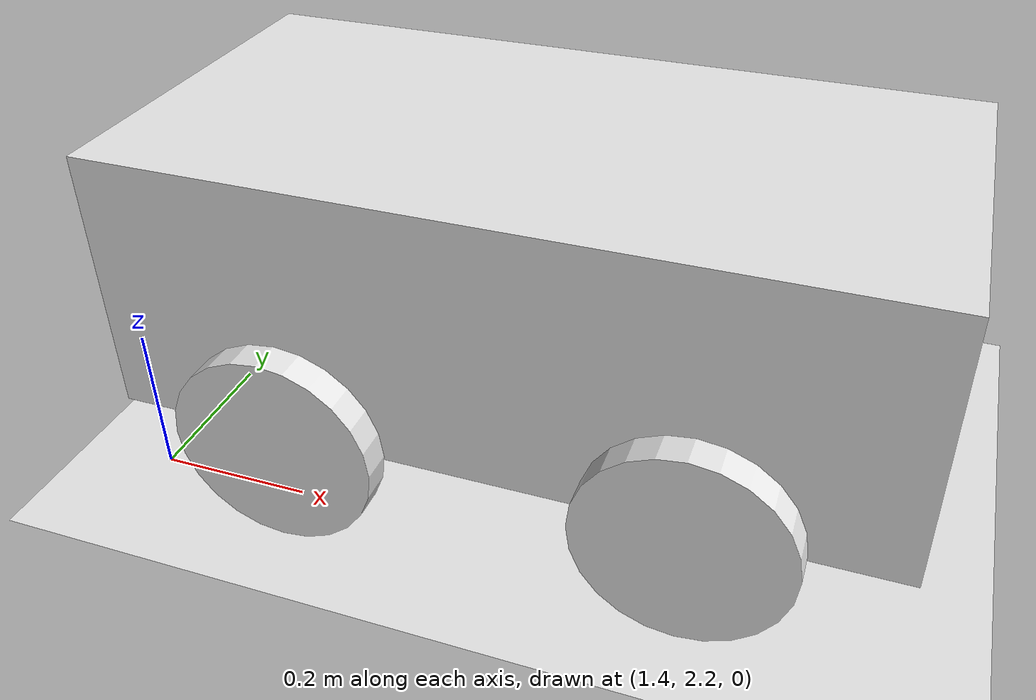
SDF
<sdf version="1.7">
 <world name="default">
  <model name="ground_plane">
   <static>1</static>
   <link name="link">
    <collision name="collision">
     <geometry><plane><normal>0 0 1</normal><size>100 100</size></plane></geometry>
     <surface><friction><ode><mu>100</mu><mu2>50</mu2></ode></friction></surface>
    </collision>
    <visual name="visual">
     <cast_shadows>0</cast_shadows>
     <geometry><plane><normal>0 0 1</normal><size>100 100</size></plane></geometry>
     <material>
      <script><uri>file://media/materials/scripts/gazebo.material</uri><name>Gazebo/White</name></script>
     </material>
    </visual>
   </link>
  </model>
  <model name="robot_0">
   <link name="link_0">
    <pose>0.144522 0.224076 0 0 -0 0</pose>
    <inertial>
     <mass>5</mass>
     <inertia>
      <ixx>0.166667</ixx>
      <ixy>0</ixy>
      <ixz>0</ixz>
      <iyy>0.166667</iyy>
      <iyz>0</iyz>
      <izz>0.166667</izz>
     </inertia>
    </inertial>
    <visual name="visual">
     <pose>0 0 0.15 0 -0 0</pose>
     <geometry><box><size>1 0.5 0.35</size></box></geometry>
     <material>
      <lighting>1</lighting>
      <script><uri>file://media/materials/scripts/gazebo.material</uri><name>Gazebo/White</name></script>
      <shader type="pixel"><normal_map>__default__</normal_map></shader>
      <ambient>0.3 0.3 0.3 1</ambient>
      <diffuse>0.7 0.7 0.7 1</diffuse>
      <specular>0.01 0.01 0.01 1</specular>
      <emissive>0 0 0 1</emissive>
     </material>
    </visual>
    <collision name="collision">
     <pose>0 0 0.15 0 -0 0</pose>
     <geometry><box><size>1 0.5 0.35</size></box></geometry>
     <surface>
      <friction>
       <ode><mu>1</mu><mu2>1</mu2><fdir1>0 0 0</fdir1><slip1>0</slip1><slip2>0</slip2></ode>
       <torsional>
        <coefficient>1</coefficient>
        <patch_radius>0</patch_radius>
        <surface_radius>0</surface_radius>
        <use_patch_radius>1</use_patch_radius>
        <ode><slip>0</slip></ode>
       </torsional>
      </friction>
      <bounce><restitution_coefficient>0</restitution_coefficient><threshold>1e+06</threshold></bounce>
      <contact>
       <collide_without_contact>0</collide_without_contact>
       <collide_without_contact_bitmask>1</collide_without_contact_bitmask>
       <collide_bitmask>1</collide_bitmask>
       <ode>
        <soft_cfm>0</soft_cfm>
        <soft_erp>0.2</soft_erp>
        <kp>1e+13</kp>
        <kd>1</kd>
        <max_vel>0.01</max_vel>
        <min_depth>0</min_depth>
       </ode>
       <bullet>
        <split_impulse>1</split_impulse>
        <split_impulse_penetration_threshold>-0.01</split_impulse_penetration_threshold>
        <soft_cfm>0</soft_cfm>
        <soft_erp>0.2</soft_erp>
        <kp>1e+13</kp>
        <kd>1</kd>
       </bullet>
      </contact>
     </surface>
    </collision>
   </link>
   <link name="link_1">
    <pose>-0.105478 -0.065924 0 1.5707 -0 0</pose>
    <inertial>
     <mass>1</mass>
     <inertia><ixx>0.145833</ixx><ixy>0</ixy><ixz>0</ixz><iyy>0.145833</iyy><iyz>0</iyz><izz>0.125</izz></inertia>
    </inertial>
    <visual name="visual">
     <geometry><cylinder><radius>0.13</radius><length>0.04</length></cylinder></geometry>
     <material>
      <lighting>1</lighting>
      <script><uri>file://media/materials/scripts/gazebo.material</uri><name>Gazebo/White</name></script>
      <shader type="pixel"><normal_map>__default__</normal_map></shader>
      <ambient>0.3 0.3 0.3 1</ambient>
      <diffuse>0.7 0.7 0.7 1</diffuse>
      <specular>0.01 0.01 0.01 1</specular>
      <emissive>0 0 0 1</emissive>
     </material>
    </visual>
    <collision name="collision">
     <geometry><cylinder><radius>0.13</radius><length>0.04</length></cylinder></geometry>
     <surface>
      <friction>
       <ode><mu>1</mu><mu2>1</mu2><fdir1>0 0 0</fdir1><slip1>0</slip1><slip2>0</slip2></ode>
       <torsional>
        <coefficient>1</coefficient>
        <patch_radius>0</patch_radius>
        <surface_radius>0</surface_radius>
        <use_patch_radius>1</use_patch_radius>
        <ode><slip>0</slip></ode>
       </torsional>
      </friction>
      <bounce><restitution_coefficient>0</restitution_coefficient><threshold>1e+06</threshold></bounce>
      <contact>
       <collide_without_contact>0</collide_without_contact>
       <collide_without_contact_bitmask>1</collide_without_contact_bitmask>
       <collide_bitmask>1</collide_bitmask>
       <ode>
        <soft_cfm>0</soft_cfm>
        <soft_erp>0.2</soft_erp>
        <kp>1e+13</kp>
        <kd>1</kd>
        <max_vel>0.01</max_vel>
        <min_depth>0</min_depth>
       </ode>
       <bullet>
        <split_impulse>1</split_impulse>
        <split_impulse_penetration_threshold>-0.01</split_impulse_penetration_threshold>
        <soft_cfm>0</soft_cfm>
        <soft_erp>0.2</soft_erp>
        <kp>1e+13</kp>
        <kd>1</kd>
       </bullet>
      </contact>
     </surface>
    </collision>
   </link>
   <link name="link_1_clone">
    <pose>0.394522 -0.065924 0 1.5707 -0 0</pose>
    <inertial>
     <mass>1</mass>
     <inertia><ixx>0.145833</ixx><ixy>0</ixy><ixz>0</ixz><iyy>0.145833</iyy><iyz>0</iyz><izz>0.125</izz></inertia>
    </inertial>
    <visual name="visual">
     <geometry><cylinder><radius>0.13</radius><length>0.04</length></cylinder></geometry>
     <material>
      <lighting>1</lighting>
      <script><uri>file://media/materials/scripts/gazebo.material</uri><name>Gazebo/White</name></script>
      <shader type="pixel"><normal_map>__default__</normal_map></shader>
      <ambient>0.3 0.3 0.3 1</ambient>
      <diffuse>0.7 0.7 0.7 1</diffuse>
      <specular>0.01 0.01 0.01 1</specular>
      <emissive>0 0 0 1</emissive>
     </material>
    </visual>
    <collision name="collision">
     <geometry><cylinder><radius>0.13</radius><length>0.04</length></cylinder></geometry>
     <surface>
      <friction>
       <ode><mu>1</mu><mu2>1</mu2><fdir1>0 0 0</fdir1><slip1>0</slip1><slip2>0</slip2></ode>
       <torsional>
        <coefficient>1</coefficient>
        <patch_radius>0</patch_radius>
        <surface_radius>0</surface_radius>
        <use_patch_radius>1</use_patch_radius>
        <ode><slip>0</slip></ode>
       </torsional>
      </friction>
      <bounce><restitution_coefficient>0</restitution_coefficient><threshold>1e+06</threshold></bounce>
      <contact>
       <collide_without_contact>0</collide_without_contact>
       <collide_without_contact_bitmask>1</collide_without_contact_bitmask>
       <collide_bitmask>1</collide_bitmask>
       <ode>
        <soft_cfm>0</soft_cfm>
        <soft_erp>0.2</soft_erp>
        <kp>1e+13</kp>
        <kd>1</kd>
        <max_vel>0.01</max_vel>
        <min_depth>0</min_depth>
       </ode>
       <bullet>
        <split_impulse>1</split_impulse>
        <split_impulse_penetration_threshold>-0.01</split_impulse_penetration_threshold>
        <soft_cfm>0</soft_cfm>
        <soft_erp>0.2</soft_erp>
        <kp>1e+13</kp>
        <kd>1</kd>
       </bullet>
      </contact>
     </surface>
    </collision>
   </link>
   <link name="link_1_clone_0">
    <pose>-0.105478 0.514076 0 1.5707 -0 0</pose>
    <inertial>
     <mass>1</mass>
     <inertia><ixx>0.145833</ixx><ixy>0</ixy><ixz>0</ixz><iyy>0.145833</iyy><iyz>0</iyz><izz>0.125</izz></inertia>
    </inertial>
    <visual name="visual">
     <geometry><cylinder><radius>0.13</radius><length>0.04</length></cylinder></geometry>
     <material>
      <lighting>1</lighting>
      <script><uri>file://media/materials/scripts/gazebo.material</uri><name>Gazebo/White</name></script>
      <shader type="pixel"><normal_map>__default__</normal_map></shader>
      <ambient>0.3 0.3 0.3 1</ambient>
      <diffuse>0.7 0.7 0.7 1</diffuse>
      <specular>0.01 0.01 0.01 1</specular>
      <emissive>0 0 0 1</emissive>
     </material>
    </visual>
    <collision name="collision">
     <geometry><cylinder><radius>0.13</radius><length>0.04</length></cylinder></geometry>
     <surface>
      <friction>
       <ode><mu>1</mu><mu2>1</mu2><fdir1>0 0 0</fdir1><slip1>0</slip1><slip2>0</slip2></ode>
       <torsional>
        <coefficient>1</coefficient>
        <patch_radius>0</patch_radius>
        <surface_radius>0</surface_radius>
        <use_patch_radius>1</use_patch_radius>
        <ode><slip>0</slip></ode>
       </torsional>
      </friction>
      <bounce><restitution_coefficient>0</restitution_coefficient><threshold>1e+06</threshold></bounce>
      <contact>
       <collide_without_contact>0</collide_without_contact>
       <collide_without_contact_bitmask>1</collide_without_contact_bitmask>
       <collide_bitmask>1</collide_bitmask>
       <ode>
        <soft_cfm>0</soft_cfm>
        <soft_erp>0.2</soft_erp>
        <kp>1e+13</kp>
        <kd>1</kd>
        <max_vel>0.01</max_vel>
        <min_depth>0</min_depth>
       </ode>
       <bullet>
        <split_impulse>1</split_impulse>
        <split_impulse_penetration_threshold>-0.01</split_impulse_penetration_threshold>
        <soft_cfm>0</soft_cfm>
        <soft_erp>0.2</soft_erp>
        <kp>1e+13</kp>
        <kd>1</kd>
       </bullet>
      </contact>
     </surface>
    </collision>
   </link>
   <link name="link_1_clone_1">
    <pose>0.394522 0.514076 0 1.5707 -0 0</pose>
    <inertial>
     <mass>1</mass>
     <inertia><ixx>0.145833</ixx><ixy>0</ixy><ixz>0</ixz><iyy>0.145833</iyy><iyz>0</iyz><izz>0.125</izz></inertia>
    </inertial>
    <visual name="visual">
     <geometry><cylinder><radius>0.13</radius><length>0.04</length></cylinder></geometry>
     <material>
      <lighting>1</lighting>
      <script><uri>file://media/materials/scripts/gazebo.material</uri><name>Gazebo/White</name></script>
      <shader type="pixel"><normal_map>__default__</normal_map></shader>
      <ambient>0.3 0.3 0.3 1</ambient>
      <diffuse>0.7 0.7 0.7 1</diffuse>
      <specular>0.01 0.01 0.01 1</specular>
      <emissive>0 0 0 1</emissive>
     </material>
    </visual>
    <collision name="collision">
     <geometry><cylinder><radius>0.13</radius><length>0.04</length></cylinder></geometry>
     <surface>
      <friction>
       <ode><mu>1</mu><mu2>1</mu2><fdir1>0 0 0</fdir1><slip1>0</slip1><slip2>0</slip2></ode>
       <torsional>
        <coefficient>1</coefficient>
        <patch_radius>0</patch_radius>
        <surface_radius>0</surface_radius>
        <use_patch_radius>1</use_patch_radius>
        <ode><slip>0</slip></ode>
       </torsional>
      </friction>
      <bounce><restitution_coefficient>0</restitution_coefficient><threshold>1e+06</threshold></bounce>
      <contact>
       <collide_without_contact>0</collide_without_contact>
       <collide_without_contact_bitmask>1</collide_without_contact_bitmask>
       <collide_bitmask>1</collide_bitmask>
       <ode>
        <soft_cfm>0</soft_cfm>
        <soft_erp>0.2</soft_erp>
        <kp>1e+13</kp>
        <kd>1</kd>
        <max_vel>0.01</max_vel>
        <min_depth>0</min_depth>
       </ode>
       <bullet>
        <split_impulse>1</split_impulse>
        <split_impulse_penetration_threshold>-0.01</split_impulse_penetration_threshold>
        <soft_cfm>0</soft_cfm>
        <soft_erp>0.2</soft_erp>
        <kp>1e+13</kp>
        <kd>1</kd>
       </bullet>
      </contact>
     </surface>
    </collision>
   </link>
   <joint name="link_0_JOINT_0" type="revolute">
    <parent>link_0</parent>
    <child>link_1</child>
    <pose>0 0 0 -0.01 0 0</pose>
    <axis>
     <xyz>0 0 1</xyz>
     <limit>
      <lower>-1.79769e+308</lower>
      <upper>1.79769e+308</upper>
      <effort>-1</effort>
      <velocity>-1</velocity>
     </limit>
     <dynamics>
      <spring_reference>0</spring_reference>
      <spring_stiffness>0</spring_stiffness>
      <damping>0</damping>
     </dynamics>
    </axis>
    <physics>
     <ode><limit><cfm>0</cfm><erp>0.2</erp></limit><suspension><cfm>0</cfm><erp>0.2</erp></suspension></ode>
    </physics>
   </joint>
   <joint name="link_0_JOINT_1" type="revolute">
    <parent>link_0</parent>
    <child>link_1_clone</child>
    <axis>
     <xyz>0 0 1</xyz>
     <limit>
      <lower>-1.79769e+308</lower>
      <upper>1.79769e+308</upper>
      <effort>-1</effort>
      <velocity>-1</velocity>
     </limit>
     <dynamics>
      <spring_reference>0</spring_reference>
      <spring_stiffness>0</spring_stiffness>
      <damping>0</damping>
     </dynamics>
    </axis>
    <physics>
     <ode><limit><cfm>0</cfm><erp>0.2</erp></limit><suspension><cfm>0</cfm><erp>0.2</erp></suspension></ode>
    </physics>
   </joint>
   <joint name="link_0_JOINT_2" type="revolute">
    <parent>link_0</parent>
    <child>link_1_clone_0</child>
    <axis>
     <xyz>0 0 1</xyz>
     <limit>
      <lower>-1.79769e+308</lower>
      <upper>1.79769e+308</upper>
      <effort>-1</effort>
      <velocity>-1</velocity>
     </limit>
     <dynamics>
      <spring_reference>0</spring_reference>
      <spring_stiffness>0</spring_stiffness>
      <damping>0</damping>
     </dynamics>
    </axis>
    <physics>
     <ode><limit><cfm>0</cfm><erp>0.2</erp></limit><suspension><cfm>0</cfm><erp>0.2</erp></suspension></ode>
    </physics>
   </joint>
   <joint name="link_0_JOINT_3" type="revolute">
    <parent>link_0</parent>
    <child>link_1_clone_1</child>
    <axis>
     <xyz>0 0 1</xyz>
     <limit>
      <lower>-1.79769e+308</lower>
      <upper>1.79769e+308</upper>
      <effort>-1</effort>
      <velocity>-1</velocity>
     </limit>
     <dynamics>
      <spring_reference>0</spring_reference>
      <spring_stiffness>0</spring_stiffness>
      <damping>0</damping>
     </dynamics>
    </axis>
    <physics>
     <ode><limit><cfm>0</cfm><erp>0.2</erp></limit><suspension><cfm>0</cfm><erp>0.2</erp></suspension></ode>
    </physics>
   </joint>
   <static>0</static>
   <pose>1.72075 2.21365 0.129998 7e-06 -0 6.7e-05</pose>
  </model>
 </world>
</sdf>
